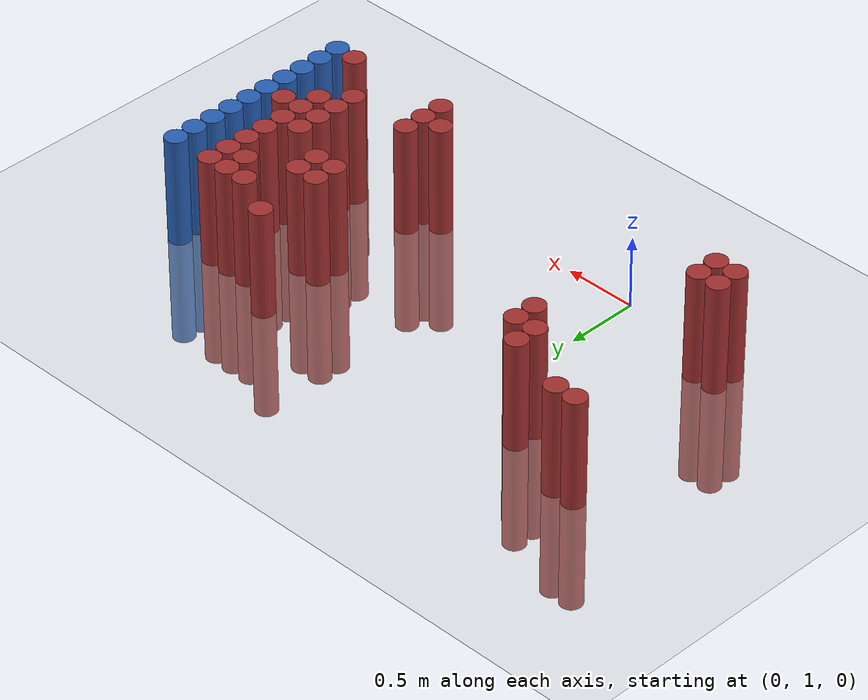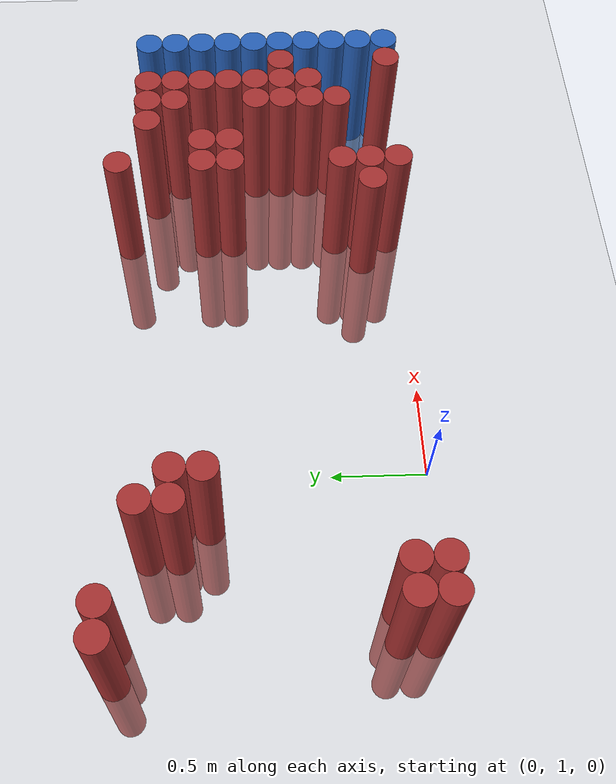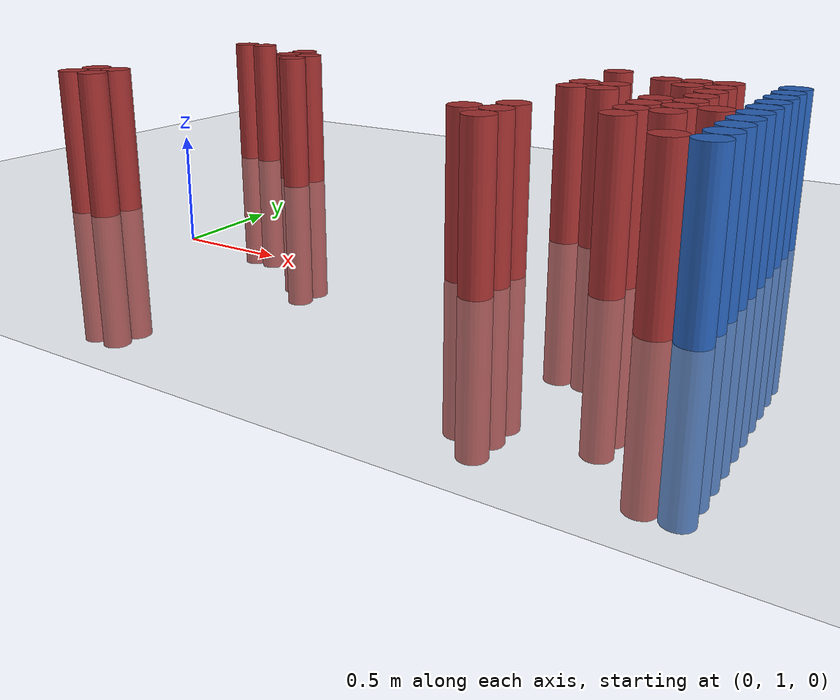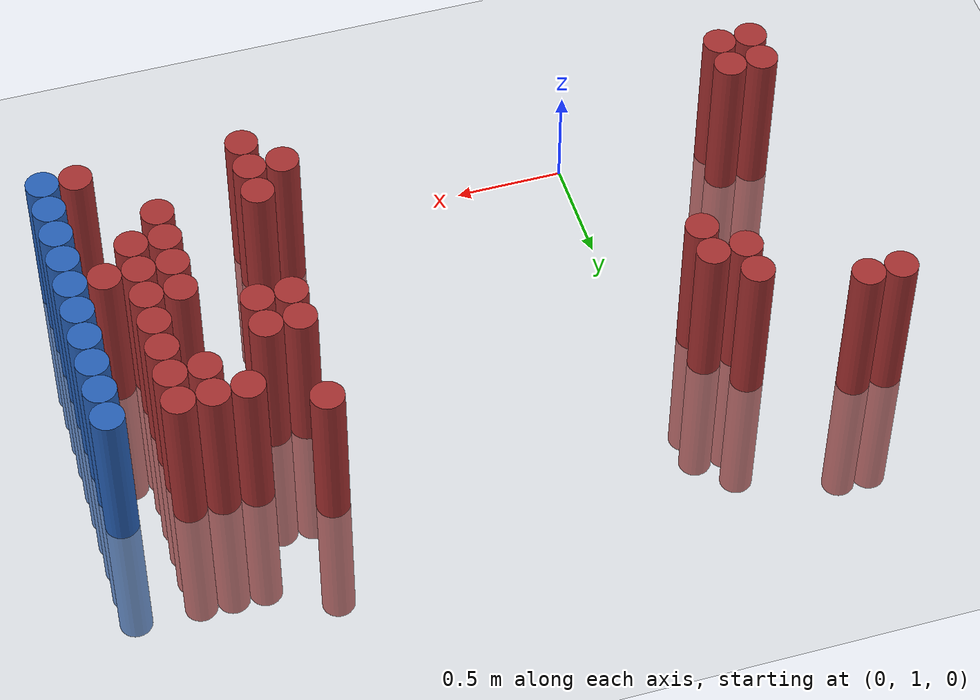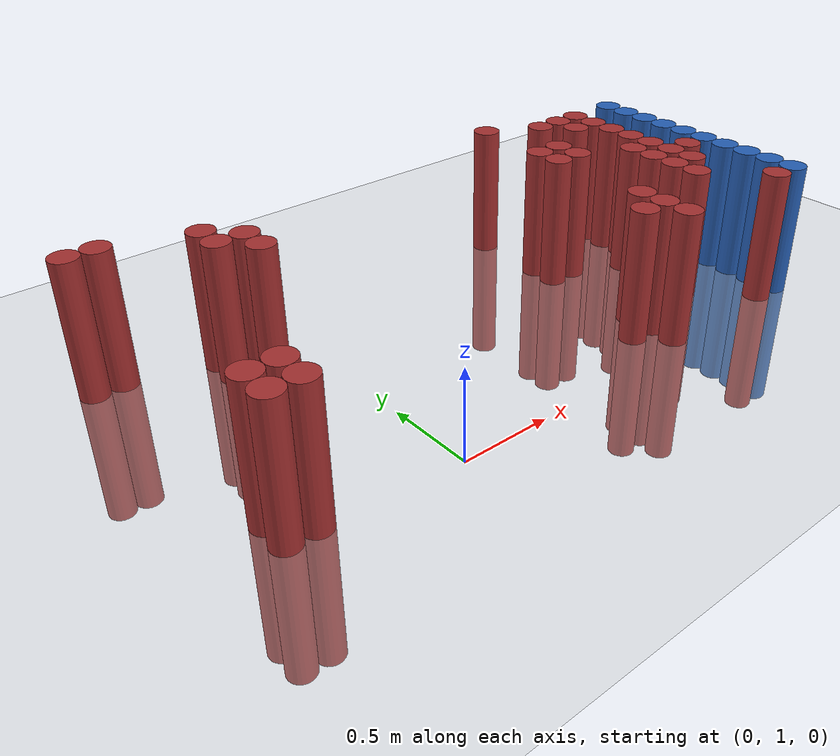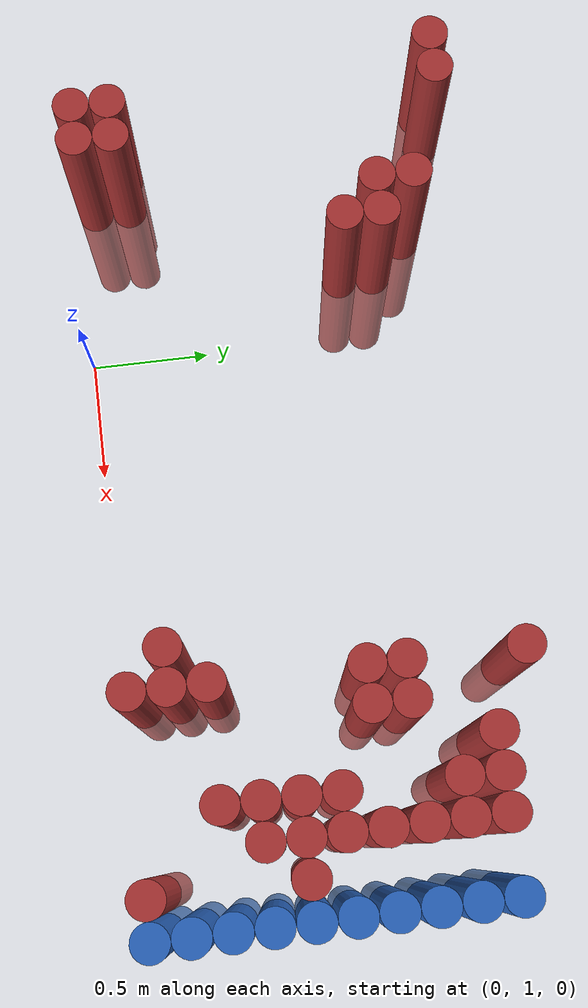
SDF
<sdf version="1.6">
 <world name="default">
  <model name="ground_plane">
   <static>1</static>
   <link name="link">
    <collision name="collision">
     <geometry><plane><normal>0 0 1</normal><size>100 100</size></plane></geometry>
     <surface><friction><ode><mu>100</mu><mu2>50</mu2></ode></friction></surface>
    </collision>
    <visual name="visual">
     <cast_shadows>0</cast_shadows>
     <geometry><plane><normal>0 0 1</normal><size>100 100</size></plane></geometry>
     <material>
      <script><uri>file://media/materials/scripts/gazebo.material</uri><name>Gazebo/Grey</name></script>
     </material>
    </visual>
   </link>
  </model>
  <model name="unit_cylinder_157">
   <static>1</static>
   <pose>-1.025000 2.575000 0.000000 0.000000 0.000000 0.000000</pose>
   <link name="link">
    <inertial>
     <mass>1</mass>
     <inertia><ixx>0.145833</ixx><ixy>0</ixy><ixz>0</ixz><iyy>0.145833</iyy><iyz>0</iyz><izz>0.125</izz></inertia>
    </inertial>
    <collision name="collision">
     <geometry><cylinder><radius>0.075000</radius><length>1.5</length></cylinder></geometry>
    </collision>
    <visual name="visual">
     <geometry><cylinder><radius>0.075000</radius><length>1.5</length></cylinder></geometry>
     <material>
      <ambient>0.648000 0.192000 0.192000 1</ambient>
      <diffuse>0.648000 0.192000 0.192000 1</diffuse>
     </material>
     <material>
      <script><name>Gazebo/Grey</name><uri>file://media/materials/scripts/gazebo.material</uri></script>
     </material>
    </visual>
   </link>
  </model>
  <model name="unit_cylinder_161">
   <static>1</static>
   <pose>-0.875000 1.075000 0.000000 0.000000 0.000000 0.000000</pose>
   <link name="link">
    <inertial>
     <mass>1</mass>
     <inertia><ixx>0.145833</ixx><ixy>0</ixy><ixz>0</ixz><iyy>0.145833</iyy><iyz>0</iyz><izz>0.125</izz></inertia>
    </inertial>
    <collision name="collision">
     <geometry><cylinder><radius>0.075000</radius><length>1.5</length></cylinder></geometry>
    </collision>
    <visual name="visual">
     <geometry><cylinder><radius>0.075000</radius><length>1.5</length></cylinder></geometry>
     <material>
      <ambient>0.648000 0.192000 0.192000 1</ambient>
      <diffuse>0.648000 0.192000 0.192000 1</diffuse>
     </material>
     <material>
      <script><name>Gazebo/Grey</name><uri>file://media/materials/scripts/gazebo.material</uri></script>
     </material>
    </visual>
   </link>
  </model>
  <model name="unit_cylinder_162">
   <static>1</static>
   <pose>-0.875000 1.225000 0.000000 0.000000 0.000000 0.000000</pose>
   <link name="link">
    <inertial>
     <mass>1</mass>
     <inertia><ixx>0.145833</ixx><ixy>0</ixy><ixz>0</ixz><iyy>0.145833</iyy><iyz>0</iyz><izz>0.125</izz></inertia>
    </inertial>
    <collision name="collision">
     <geometry><cylinder><radius>0.075000</radius><length>1.5</length></cylinder></geometry>
    </collision>
    <visual name="visual">
     <geometry><cylinder><radius>0.075000</radius><length>1.5</length></cylinder></geometry>
     <material>
      <ambient>0.648000 0.192000 0.192000 1</ambient>
      <diffuse>0.648000 0.192000 0.192000 1</diffuse>
     </material>
     <material>
      <script><name>Gazebo/Grey</name><uri>file://media/materials/scripts/gazebo.material</uri></script>
     </material>
    </visual>
   </link>
  </model>
  <model name="unit_cylinder_163">
   <static>1</static>
   <pose>-0.875000 2.575000 0.000000 0.000000 0.000000 0.000000</pose>
   <link name="link">
    <inertial>
     <mass>1</mass>
     <inertia><ixx>0.145833</ixx><ixy>0</ixy><ixz>0</ixz><iyy>0.145833</iyy><iyz>0</iyz><izz>0.125</izz></inertia>
    </inertial>
    <collision name="collision">
     <geometry><cylinder><radius>0.075000</radius><length>1.5</length></cylinder></geometry>
    </collision>
    <visual name="visual">
     <geometry><cylinder><radius>0.075000</radius><length>1.5</length></cylinder></geometry>
     <material>
      <ambient>0.648000 0.192000 0.192000 1</ambient>
      <diffuse>0.648000 0.192000 0.192000 1</diffuse>
     </material>
     <material>
      <script><name>Gazebo/Grey</name><uri>file://media/materials/scripts/gazebo.material</uri></script>
     </material>
    </visual>
   </link>
  </model>
  <model name="unit_cylinder_166">
   <static>1</static>
   <pose>-0.725000 1.075000 0.000000 0.000000 0.000000 0.000000</pose>
   <link name="link">
    <inertial>
     <mass>1</mass>
     <inertia><ixx>0.145833</ixx><ixy>0</ixy><ixz>0</ixz><iyy>0.145833</iyy><iyz>0</iyz><izz>0.125</izz></inertia>
    </inertial>
    <collision name="collision">
     <geometry><cylinder><radius>0.075000</radius><length>1.5</length></cylinder></geometry>
    </collision>
    <visual name="visual">
     <geometry><cylinder><radius>0.075000</radius><length>1.5</length></cylinder></geometry>
     <material>
      <ambient>0.648000 0.192000 0.192000 1</ambient>
      <diffuse>0.648000 0.192000 0.192000 1</diffuse>
     </material>
     <material>
      <script><name>Gazebo/Grey</name><uri>file://media/materials/scripts/gazebo.material</uri></script>
     </material>
    </visual>
   </link>
  </model>
  <model name="unit_cylinder_167">
   <static>1</static>
   <pose>-0.725000 1.225000 0.000000 0.000000 0.000000 0.000000</pose>
   <link name="link">
    <inertial>
     <mass>1</mass>
     <inertia><ixx>0.145833</ixx><ixy>0</ixy><ixz>0</ixz><iyy>0.145833</iyy><iyz>0</iyz><izz>0.125</izz></inertia>
    </inertial>
    <collision name="collision">
     <geometry><cylinder><radius>0.075000</radius><length>1.5</length></cylinder></geometry>
    </collision>
    <visual name="visual">
     <geometry><cylinder><radius>0.075000</radius><length>1.5</length></cylinder></geometry>
     <material>
      <ambient>0.648000 0.192000 0.192000 1</ambient>
      <diffuse>0.648000 0.192000 0.192000 1</diffuse>
     </material>
     <material>
      <script><name>Gazebo/Grey</name><uri>file://media/materials/scripts/gazebo.material</uri></script>
     </material>
    </visual>
   </link>
  </model>
  <model name="unit_cylinder_175">
   <static>1</static>
   <pose>-0.425000 2.275000 0.000000 0.000000 0.000000 0.000000</pose>
   <link name="link">
    <inertial>
     <mass>1</mass>
     <inertia><ixx>0.145833</ixx><ixy>0</ixy><ixz>0</ixz><iyy>0.145833</iyy><iyz>0</iyz><izz>0.125</izz></inertia>
    </inertial>
    <collision name="collision">
     <geometry><cylinder><radius>0.075000</radius><length>1.5</length></cylinder></geometry>
    </collision>
    <visual name="visual">
     <geometry><cylinder><radius>0.075000</radius><length>1.5</length></cylinder></geometry>
     <material>
      <ambient>0.648000 0.192000 0.192000 1</ambient>
      <diffuse>0.648000 0.192000 0.192000 1</diffuse>
     </material>
     <material>
      <script><name>Gazebo/Grey</name><uri>file://media/materials/scripts/gazebo.material</uri></script>
     </material>
    </visual>
   </link>
  </model>
  <model name="unit_cylinder_176">
   <static>1</static>
   <pose>-0.425000 2.425000 0.000000 0.000000 0.000000 0.000000</pose>
   <link name="link">
    <inertial>
     <mass>1</mass>
     <inertia><ixx>0.145833</ixx><ixy>0</ixy><ixz>0</ixz><iyy>0.145833</iyy><iyz>0</iyz><izz>0.125</izz></inertia>
    </inertial>
    <collision name="collision">
     <geometry><cylinder><radius>0.075000</radius><length>1.5</length></cylinder></geometry>
    </collision>
    <visual name="visual">
     <geometry><cylinder><radius>0.075000</radius><length>1.5</length></cylinder></geometry>
     <material>
      <ambient>0.648000 0.192000 0.192000 1</ambient>
      <diffuse>0.648000 0.192000 0.192000 1</diffuse>
     </material>
     <material>
      <script><name>Gazebo/Grey</name><uri>file://media/materials/scripts/gazebo.material</uri></script>
     </material>
    </visual>
   </link>
  </model>
  <model name="unit_cylinder_179">
   <static>1</static>
   <pose>-0.275000 2.125000 0.000000 0.000000 0.000000 0.000000</pose>
   <link name="link">
    <inertial>
     <mass>1</mass>
     <inertia><ixx>0.145833</ixx><ixy>0</ixy><ixz>0</ixz><iyy>0.145833</iyy><iyz>0</iyz><izz>0.125</izz></inertia>
    </inertial>
    <collision name="collision">
     <geometry><cylinder><radius>0.075000</radius><length>1.5</length></cylinder></geometry>
    </collision>
    <visual name="visual">
     <geometry><cylinder><radius>0.075000</radius><length>1.5</length></cylinder></geometry>
     <material>
      <ambient>0.648000 0.192000 0.192000 1</ambient>
      <diffuse>0.648000 0.192000 0.192000 1</diffuse>
     </material>
     <material>
      <script><name>Gazebo/Grey</name><uri>file://media/materials/scripts/gazebo.material</uri></script>
     </material>
    </visual>
   </link>
  </model>
  <model name="unit_cylinder_180">
   <static>1</static>
   <pose>-0.275000 2.275000 0.000000 0.000000 0.000000 0.000000</pose>
   <link name="link">
    <inertial>
     <mass>1</mass>
     <inertia><ixx>0.145833</ixx><ixy>0</ixy><ixz>0</ixz><iyy>0.145833</iyy><iyz>0</iyz><izz>0.125</izz></inertia>
    </inertial>
    <collision name="collision">
     <geometry><cylinder><radius>0.075000</radius><length>1.5</length></cylinder></geometry>
    </collision>
    <visual name="visual">
     <geometry><cylinder><radius>0.075000</radius><length>1.5</length></cylinder></geometry>
     <material>
      <ambient>0.648000 0.192000 0.192000 1</ambient>
      <diffuse>0.648000 0.192000 0.192000 1</diffuse>
     </material>
     <material>
      <script><name>Gazebo/Grey</name><uri>file://media/materials/scripts/gazebo.material</uri></script>
     </material>
    </visual>
   </link>
  </model>
  <model name="unit_cylinder_197">
   <static>1</static>
   <pose>1.375000 1.225000 0.000000 0.000000 0.000000 0.000000</pose>
   <link name="link">
    <inertial>
     <mass>1</mass>
     <inertia><ixx>0.145833</ixx><ixy>0</ixy><ixz>0</ixz><iyy>0.145833</iyy><iyz>0</iyz><izz>0.125</izz></inertia>
    </inertial>
    <collision name="collision">
     <geometry><cylinder><radius>0.075000</radius><length>1.5</length></cylinder></geometry>
    </collision>
    <visual name="visual">
     <geometry><cylinder><radius>0.075000</radius><length>1.5</length></cylinder></geometry>
     <material>
      <ambient>0.648000 0.192000 0.192000 1</ambient>
      <diffuse>0.648000 0.192000 0.192000 1</diffuse>
     </material>
     <material>
      <script><name>Gazebo/Grey</name><uri>file://media/materials/scripts/gazebo.material</uri></script>
     </material>
    </visual>
   </link>
  </model>
  <model name="unit_cylinder_201">
   <static>1</static>
   <pose>1.525000 1.075000 0.000000 0.000000 0.000000 0.000000</pose>
   <link name="link">
    <inertial>
     <mass>1</mass>
     <inertia><ixx>0.145833</ixx><ixy>0</ixy><ixz>0</ixz><iyy>0.145833</iyy><iyz>0</iyz><izz>0.125</izz></inertia>
    </inertial>
    <collision name="collision">
     <geometry><cylinder><radius>0.075000</radius><length>1.5</length></cylinder></geometry>
    </collision>
    <visual name="visual">
     <geometry><cylinder><radius>0.075000</radius><length>1.5</length></cylinder></geometry>
     <material>
      <ambient>0.648000 0.192000 0.192000 1</ambient>
      <diffuse>0.648000 0.192000 0.192000 1</diffuse>
     </material>
     <material>
      <script><name>Gazebo/Grey</name><uri>file://media/materials/scripts/gazebo.material</uri></script>
     </material>
    </visual>
   </link>
  </model>
  <model name="unit_cylinder_202">
   <static>1</static>
   <pose>1.525000 1.225000 0.000000 0.000000 0.000000 0.000000</pose>
   <link name="link">
    <inertial>
     <mass>1</mass>
     <inertia><ixx>0.145833</ixx><ixy>0</ixy><ixz>0</ixz><iyy>0.145833</iyy><iyz>0</iyz><izz>0.125</izz></inertia>
    </inertial>
    <collision name="collision">
     <geometry><cylinder><radius>0.075000</radius><length>1.5</length></cylinder></geometry>
    </collision>
    <visual name="visual">
     <geometry><cylinder><radius>0.075000</radius><length>1.5</length></cylinder></geometry>
     <material>
      <ambient>0.648000 0.192000 0.192000 1</ambient>
      <diffuse>0.648000 0.192000 0.192000 1</diffuse>
     </material>
     <material>
      <script><name>Gazebo/Grey</name><uri>file://media/materials/scripts/gazebo.material</uri></script>
     </material>
    </visual>
   </link>
  </model>
  <model name="unit_cylinder_203">
   <static>1</static>
   <pose>1.525000 1.375000 0.000000 0.000000 0.000000 0.000000</pose>
   <link name="link">
    <inertial>
     <mass>1</mass>
     <inertia><ixx>0.145833</ixx><ixy>0</ixy><ixz>0</ixz><iyy>0.145833</iyy><iyz>0</iyz><izz>0.125</izz></inertia>
    </inertial>
    <collision name="collision">
     <geometry><cylinder><radius>0.075000</radius><length>1.5</length></cylinder></geometry>
    </collision>
    <visual name="visual">
     <geometry><cylinder><radius>0.075000</radius><length>1.5</length></cylinder></geometry>
     <material>
      <ambient>0.648000 0.192000 0.192000 1</ambient>
      <diffuse>0.648000 0.192000 0.192000 1</diffuse>
     </material>
     <material>
      <script><name>Gazebo/Grey</name><uri>file://media/materials/scripts/gazebo.material</uri></script>
     </material>
    </visual>
   </link>
  </model>
  <model name="unit_cylinder_204">
   <static>1</static>
   <pose>1.525000 1.975000 0.000000 0.000000 0.000000 0.000000</pose>
   <link name="link">
    <inertial>
     <mass>1</mass>
     <inertia><ixx>0.145833</ixx><ixy>0</ixy><ixz>0</ixz><iyy>0.145833</iyy><iyz>0</iyz><izz>0.125</izz></inertia>
    </inertial>
    <collision name="collision">
     <geometry><cylinder><radius>0.075000</radius><length>1.5</length></cylinder></geometry>
    </collision>
    <visual name="visual">
     <geometry><cylinder><radius>0.075000</radius><length>1.5</length></cylinder></geometry>
     <material>
      <ambient>0.648000 0.192000 0.192000 1</ambient>
      <diffuse>0.648000 0.192000 0.192000 1</diffuse>
     </material>
     <material>
      <script><name>Gazebo/Grey</name><uri>file://media/materials/scripts/gazebo.material</uri></script>
     </material>
    </visual>
   </link>
  </model>
  <model name="unit_cylinder_205">
   <static>1</static>
   <pose>1.525000 2.125000 0.000000 0.000000 0.000000 0.000000</pose>
   <link name="link">
    <inertial>
     <mass>1</mass>
     <inertia><ixx>0.145833</ixx><ixy>0</ixy><ixz>0</ixz><iyy>0.145833</iyy><iyz>0</iyz><izz>0.125</izz></inertia>
    </inertial>
    <collision name="collision">
     <geometry><cylinder><radius>0.075000</radius><length>1.5</length></cylinder></geometry>
    </collision>
    <visual name="visual">
     <geometry><cylinder><radius>0.075000</radius><length>1.5</length></cylinder></geometry>
     <material>
      <ambient>0.648000 0.192000 0.192000 1</ambient>
      <diffuse>0.648000 0.192000 0.192000 1</diffuse>
     </material>
     <material>
      <script><name>Gazebo/Grey</name><uri>file://media/materials/scripts/gazebo.material</uri></script>
     </material>
    </visual>
   </link>
  </model>
  <model name="unit_cylinder_206">
   <static>1</static>
   <pose>1.525000 2.575000 0.000000 0.000000 0.000000 0.000000</pose>
   <link name="link">
    <inertial>
     <mass>1</mass>
     <inertia><ixx>0.145833</ixx><ixy>0</ixy><ixz>0</ixz><iyy>0.145833</iyy><iyz>0</iyz><izz>0.125</izz></inertia>
    </inertial>
    <collision name="collision">
     <geometry><cylinder><radius>0.075000</radius><length>1.5</length></cylinder></geometry>
    </collision>
    <visual name="visual">
     <geometry><cylinder><radius>0.075000</radius><length>1.5</length></cylinder></geometry>
     <material>
      <ambient>0.648000 0.192000 0.192000 1</ambient>
      <diffuse>0.648000 0.192000 0.192000 1</diffuse>
     </material>
     <material>
      <script><name>Gazebo/Grey</name><uri>file://media/materials/scripts/gazebo.material</uri></script>
     </material>
    </visual>
   </link>
  </model>
  <model name="unit_cylinder_207">
   <static>1</static>
   <pose>1.675000 1.975000 0.000000 0.000000 0.000000 0.000000</pose>
   <link name="link">
    <inertial>
     <mass>1</mass>
     <inertia><ixx>0.145833</ixx><ixy>0</ixy><ixz>0</ixz><iyy>0.145833</iyy><iyz>0</iyz><izz>0.125</izz></inertia>
    </inertial>
    <collision name="collision">
     <geometry><cylinder><radius>0.075000</radius><length>1.5</length></cylinder></geometry>
    </collision>
    <visual name="visual">
     <geometry><cylinder><radius>0.075000</radius><length>1.5</length></cylinder></geometry>
     <material>
      <ambient>0.648000 0.192000 0.192000 1</ambient>
      <diffuse>0.648000 0.192000 0.192000 1</diffuse>
     </material>
     <material>
      <script><name>Gazebo/Grey</name><uri>file://media/materials/scripts/gazebo.material</uri></script>
     </material>
    </visual>
   </link>
  </model>
  <model name="unit_cylinder_208">
   <static>1</static>
   <pose>1.675000 2.125000 0.000000 0.000000 0.000000 0.000000</pose>
   <link name="link">
    <inertial>
     <mass>1</mass>
     <inertia><ixx>0.145833</ixx><ixy>0</ixy><ixz>0</ixz><iyy>0.145833</iyy><iyz>0</iyz><izz>0.125</izz></inertia>
    </inertial>
    <collision name="collision">
     <geometry><cylinder><radius>0.075000</radius><length>1.5</length></cylinder></geometry>
    </collision>
    <visual name="visual">
     <geometry><cylinder><radius>0.075000</radius><length>1.5</length></cylinder></geometry>
     <material>
      <ambient>0.648000 0.192000 0.192000 1</ambient>
      <diffuse>0.648000 0.192000 0.192000 1</diffuse>
     </material>
     <material>
      <script><name>Gazebo/Grey</name><uri>file://media/materials/scripts/gazebo.material</uri></script>
     </material>
    </visual>
   </link>
  </model>
  <model name="unit_cylinder_210">
   <static>1</static>
   <pose>1.825000 2.425000 0.000000 0.000000 0.000000 0.000000</pose>
   <link name="link">
    <inertial>
     <mass>1</mass>
     <inertia><ixx>0.145833</ixx><ixy>0</ixy><ixz>0</ixz><iyy>0.145833</iyy><iyz>0</iyz><izz>0.125</izz></inertia>
    </inertial>
    <collision name="collision">
     <geometry><cylinder><radius>0.075000</radius><length>1.5</length></cylinder></geometry>
    </collision>
    <visual name="visual">
     <geometry><cylinder><radius>0.075000</radius><length>1.5</length></cylinder></geometry>
     <material>
      <ambient>0.648000 0.192000 0.192000 1</ambient>
      <diffuse>0.648000 0.192000 0.192000 1</diffuse>
     </material>
     <material>
      <script><name>Gazebo/Grey</name><uri>file://media/materials/scripts/gazebo.material</uri></script>
     </material>
    </visual>
   </link>
  </model>
  <model name="unit_cylinder_211">
   <static>1</static>
   <pose>1.975000 1.375000 0.000000 0.000000 0.000000 0.000000</pose>
   <link name="link">
    <inertial>
     <mass>1</mass>
     <inertia><ixx>0.145833</ixx><ixy>0</ixy><ixz>0</ixz><iyy>0.145833</iyy><iyz>0</iyz><izz>0.125</izz></inertia>
    </inertial>
    <collision name="collision">
     <geometry><cylinder><radius>0.075000</radius><length>1.5</length></cylinder></geometry>
    </collision>
    <visual name="visual">
     <geometry><cylinder><radius>0.075000</radius><length>1.5</length></cylinder></geometry>
     <material>
      <ambient>0.648000 0.192000 0.192000 1</ambient>
      <diffuse>0.648000 0.192000 0.192000 1</diffuse>
     </material>
     <material>
      <script><name>Gazebo/Grey</name><uri>file://media/materials/scripts/gazebo.material</uri></script>
     </material>
    </visual>
   </link>
  </model>
  <model name="unit_cylinder_212">
   <static>1</static>
   <pose>1.975000 1.525000 0.000000 0.000000 0.000000 0.000000</pose>
   <link name="link">
    <inertial>
     <mass>1</mass>
     <inertia><ixx>0.145833</ixx><ixy>0</ixy><ixz>0</ixz><iyy>0.145833</iyy><iyz>0</iyz><izz>0.125</izz></inertia>
    </inertial>
    <collision name="collision">
     <geometry><cylinder><radius>0.075000</radius><length>1.5</length></cylinder></geometry>
    </collision>
    <visual name="visual">
     <geometry><cylinder><radius>0.075000</radius><length>1.5</length></cylinder></geometry>
     <material>
      <ambient>0.648000 0.192000 0.192000 1</ambient>
      <diffuse>0.648000 0.192000 0.192000 1</diffuse>
     </material>
     <material>
      <script><name>Gazebo/Grey</name><uri>file://media/materials/scripts/gazebo.material</uri></script>
     </material>
    </visual>
   </link>
  </model>
  <model name="unit_cylinder_213">
   <static>1</static>
   <pose>1.975000 1.675000 0.000000 0.000000 0.000000 0.000000</pose>
   <link name="link">
    <inertial>
     <mass>1</mass>
     <inertia><ixx>0.145833</ixx><ixy>0</ixy><ixz>0</ixz><iyy>0.145833</iyy><iyz>0</iyz><izz>0.125</izz></inertia>
    </inertial>
    <collision name="collision">
     <geometry><cylinder><radius>0.075000</radius><length>1.5</length></cylinder></geometry>
    </collision>
    <visual name="visual">
     <geometry><cylinder><radius>0.075000</radius><length>1.5</length></cylinder></geometry>
     <material>
      <ambient>0.648000 0.192000 0.192000 1</ambient>
      <diffuse>0.648000 0.192000 0.192000 1</diffuse>
     </material>
     <material>
      <script><name>Gazebo/Grey</name><uri>file://media/materials/scripts/gazebo.material</uri></script>
     </material>
    </visual>
   </link>
  </model>
  <model name="unit_cylinder_214">
   <static>1</static>
   <pose>1.975000 1.825000 0.000000 0.000000 0.000000 0.000000</pose>
   <link name="link">
    <inertial>
     <mass>1</mass>
     <inertia><ixx>0.145833</ixx><ixy>0</ixy><ixz>0</ixz><iyy>0.145833</iyy><iyz>0</iyz><izz>0.125</izz></inertia>
    </inertial>
    <collision name="collision">
     <geometry><cylinder><radius>0.075000</radius><length>1.5</length></cylinder></geometry>
    </collision>
    <visual name="visual">
     <geometry><cylinder><radius>0.075000</radius><length>1.5</length></cylinder></geometry>
     <material>
      <ambient>0.648000 0.192000 0.192000 1</ambient>
      <diffuse>0.648000 0.192000 0.192000 1</diffuse>
     </material>
     <material>
      <script><name>Gazebo/Grey</name><uri>file://media/materials/scripts/gazebo.material</uri></script>
     </material>
    </visual>
   </link>
  </model>
  <model name="unit_cylinder_215">
   <static>1</static>
   <pose>1.975000 2.275000 0.000000 0.000000 0.000000 0.000000</pose>
   <link name="link">
    <inertial>
     <mass>1</mass>
     <inertia><ixx>0.145833</ixx><ixy>0</ixy><ixz>0</ixz><iyy>0.145833</iyy><iyz>0</iyz><izz>0.125</izz></inertia>
    </inertial>
    <collision name="collision">
     <geometry><cylinder><radius>0.075000</radius><length>1.5</length></cylinder></geometry>
    </collision>
    <visual name="visual">
     <geometry><cylinder><radius>0.075000</radius><length>1.5</length></cylinder></geometry>
     <material>
      <ambient>0.648000 0.192000 0.192000 1</ambient>
      <diffuse>0.648000 0.192000 0.192000 1</diffuse>
     </material>
     <material>
      <script><name>Gazebo/Grey</name><uri>file://media/materials/scripts/gazebo.material</uri></script>
     </material>
    </visual>
   </link>
  </model>
  <model name="unit_cylinder_216">
   <static>1</static>
   <pose>1.975000 2.425000 0.000000 0.000000 0.000000 0.000000</pose>
   <link name="link">
    <inertial>
     <mass>1</mass>
     <inertia><ixx>0.145833</ixx><ixy>0</ixy><ixz>0</ixz><iyy>0.145833</iyy><iyz>0</iyz><izz>0.125</izz></inertia>
    </inertial>
    <collision name="collision">
     <geometry><cylinder><radius>0.075000</radius><length>1.5</length></cylinder></geometry>
    </collision>
    <visual name="visual">
     <geometry><cylinder><radius>0.075000</radius><length>1.5</length></cylinder></geometry>
     <material>
      <ambient>0.648000 0.192000 0.192000 1</ambient>
      <diffuse>0.648000 0.192000 0.192000 1</diffuse>
     </material>
     <material>
      <script><name>Gazebo/Grey</name><uri>file://media/materials/scripts/gazebo.material</uri></script>
     </material>
    </visual>
   </link>
  </model>
  <model name="unit_cylinder_218">
   <static>1</static>
   <pose>2.125000 1.525000 0.000000 0.000000 0.000000 0.000000</pose>
   <link name="link">
    <inertial>
     <mass>1</mass>
     <inertia><ixx>0.145833</ixx><ixy>0</ixy><ixz>0</ixz><iyy>0.145833</iyy><iyz>0</iyz><izz>0.125</izz></inertia>
    </inertial>
    <collision name="collision">
     <geometry><cylinder><radius>0.075000</radius><length>1.5</length></cylinder></geometry>
    </collision>
    <visual name="visual">
     <geometry><cylinder><radius>0.075000</radius><length>1.5</length></cylinder></geometry>
     <material>
      <ambient>0.648000 0.192000 0.192000 1</ambient>
      <diffuse>0.648000 0.192000 0.192000 1</diffuse>
     </material>
     <material>
      <script><name>Gazebo/Grey</name><uri>file://media/materials/scripts/gazebo.material</uri></script>
     </material>
    </visual>
   </link>
  </model>
  <model name="unit_cylinder_219">
   <static>1</static>
   <pose>2.125000 1.675000 0.000000 0.000000 0.000000 0.000000</pose>
   <link name="link">
    <inertial>
     <mass>1</mass>
     <inertia><ixx>0.145833</ixx><ixy>0</ixy><ixz>0</ixz><iyy>0.145833</iyy><iyz>0</iyz><izz>0.125</izz></inertia>
    </inertial>
    <collision name="collision">
     <geometry><cylinder><radius>0.075000</radius><length>1.5</length></cylinder></geometry>
    </collision>
    <visual name="visual">
     <geometry><cylinder><radius>0.075000</radius><length>1.5</length></cylinder></geometry>
     <material>
      <ambient>0.648000 0.192000 0.192000 1</ambient>
      <diffuse>0.648000 0.192000 0.192000 1</diffuse>
     </material>
     <material>
      <script><name>Gazebo/Grey</name><uri>file://media/materials/scripts/gazebo.material</uri></script>
     </material>
    </visual>
   </link>
  </model>
  <model name="unit_cylinder_220">
   <static>1</static>
   <pose>2.125000 1.825000 0.000000 0.000000 0.000000 0.000000</pose>
   <link name="link">
    <inertial>
     <mass>1</mass>
     <inertia><ixx>0.145833</ixx><ixy>0</ixy><ixz>0</ixz><iyy>0.145833</iyy><iyz>0</iyz><izz>0.125</izz></inertia>
    </inertial>
    <collision name="collision">
     <geometry><cylinder><radius>0.075000</radius><length>1.5</length></cylinder></geometry>
    </collision>
    <visual name="visual">
     <geometry><cylinder><radius>0.075000</radius><length>1.5</length></cylinder></geometry>
     <material>
      <ambient>0.648000 0.192000 0.192000 1</ambient>
      <diffuse>0.648000 0.192000 0.192000 1</diffuse>
     </material>
     <material>
      <script><name>Gazebo/Grey</name><uri>file://media/materials/scripts/gazebo.material</uri></script>
     </material>
    </visual>
   </link>
  </model>
  <model name="unit_cylinder_221">
   <static>1</static>
   <pose>2.125000 1.975000 0.000000 0.000000 0.000000 0.000000</pose>
   <link name="link">
    <inertial>
     <mass>1</mass>
     <inertia><ixx>0.145833</ixx><ixy>0</ixy><ixz>0</ixz><iyy>0.145833</iyy><iyz>0</iyz><izz>0.125</izz></inertia>
    </inertial>
    <collision name="collision">
     <geometry><cylinder><radius>0.075000</radius><length>1.5</length></cylinder></geometry>
    </collision>
    <visual name="visual">
     <geometry><cylinder><radius>0.075000</radius><length>1.5</length></cylinder></geometry>
     <material>
      <ambient>0.648000 0.192000 0.192000 1</ambient>
      <diffuse>0.648000 0.192000 0.192000 1</diffuse>
     </material>
     <material>
      <script><name>Gazebo/Grey</name><uri>file://media/materials/scripts/gazebo.material</uri></script>
     </material>
    </visual>
   </link>
  </model>
  <model name="unit_cylinder_222">
   <static>1</static>
   <pose>2.125000 2.125000 0.000000 0.000000 0.000000 0.000000</pose>
   <link name="link">
    <inertial>
     <mass>1</mass>
     <inertia><ixx>0.145833</ixx><ixy>0</ixy><ixz>0</ixz><iyy>0.145833</iyy><iyz>0</iyz><izz>0.125</izz></inertia>
    </inertial>
    <collision name="collision">
     <geometry><cylinder><radius>0.075000</radius><length>1.5</length></cylinder></geometry>
    </collision>
    <visual name="visual">
     <geometry><cylinder><radius>0.075000</radius><length>1.5</length></cylinder></geometry>
     <material>
      <ambient>0.648000 0.192000 0.192000 1</ambient>
      <diffuse>0.648000 0.192000 0.192000 1</diffuse>
     </material>
     <material>
      <script><name>Gazebo/Grey</name><uri>file://media/materials/scripts/gazebo.material</uri></script>
     </material>
    </visual>
   </link>
  </model>
  <model name="unit_cylinder_223">
   <static>1</static>
   <pose>2.125000 2.275000 0.000000 0.000000 0.000000 0.000000</pose>
   <link name="link">
    <inertial>
     <mass>1</mass>
     <inertia><ixx>0.145833</ixx><ixy>0</ixy><ixz>0</ixz><iyy>0.145833</iyy><iyz>0</iyz><izz>0.125</izz></inertia>
    </inertial>
    <collision name="collision">
     <geometry><cylinder><radius>0.075000</radius><length>1.5</length></cylinder></geometry>
    </collision>
    <visual name="visual">
     <geometry><cylinder><radius>0.075000</radius><length>1.5</length></cylinder></geometry>
     <material>
      <ambient>0.648000 0.192000 0.192000 1</ambient>
      <diffuse>0.648000 0.192000 0.192000 1</diffuse>
     </material>
     <material>
      <script><name>Gazebo/Grey</name><uri>file://media/materials/scripts/gazebo.material</uri></script>
     </material>
    </visual>
   </link>
  </model>
  <model name="unit_cylinder_224">
   <static>1</static>
   <pose>2.125000 2.425000 0.000000 0.000000 0.000000 0.000000</pose>
   <link name="link">
    <inertial>
     <mass>1</mass>
     <inertia><ixx>0.145833</ixx><ixy>0</ixy><ixz>0</ixz><iyy>0.145833</iyy><iyz>0</iyz><izz>0.125</izz></inertia>
    </inertial>
    <collision name="collision">
     <geometry><cylinder><radius>0.075000</radius><length>1.5</length></cylinder></geometry>
    </collision>
    <visual name="visual">
     <geometry><cylinder><radius>0.075000</radius><length>1.5</length></cylinder></geometry>
     <material>
      <ambient>0.648000 0.192000 0.192000 1</ambient>
      <diffuse>0.648000 0.192000 0.192000 1</diffuse>
     </material>
     <material>
      <script><name>Gazebo/Grey</name><uri>file://media/materials/scripts/gazebo.material</uri></script>
     </material>
    </visual>
   </link>
  </model>
  <model name="unit_cylinder_232">
   <static>1</static>
   <pose>2.275000 1.075000 0.000000 0.000000 0.000000 0.000000</pose>
   <link name="link">
    <inertial>
     <mass>1</mass>
     <inertia><ixx>0.145833</ixx><ixy>0</ixy><ixz>0</ixz><iyy>0.145833</iyy><iyz>0</iyz><izz>0.125</izz></inertia>
    </inertial>
    <collision name="collision">
     <geometry><cylinder><radius>0.075000</radius><length>1.5</length></cylinder></geometry>
    </collision>
    <visual name="visual">
     <geometry><cylinder><radius>0.075000</radius><length>1.5</length></cylinder></geometry>
     <material>
      <ambient>0.648000 0.192000 0.192000 1</ambient>
      <diffuse>0.648000 0.192000 0.192000 1</diffuse>
     </material>
     <material>
      <script><name>Gazebo/Grey</name><uri>file://media/materials/scripts/gazebo.material</uri></script>
     </material>
    </visual>
   </link>
  </model>
  <model name="unit_cylinder_233">
   <static>1</static>
   <pose>2.275000 1.675000 0.000000 0.000000 0.000000 0.000000</pose>
   <link name="link">
    <inertial>
     <mass>1</mass>
     <inertia><ixx>0.145833</ixx><ixy>0</ixy><ixz>0</ixz><iyy>0.145833</iyy><iyz>0</iyz><izz>0.125</izz></inertia>
    </inertial>
    <collision name="collision">
     <geometry><cylinder><radius>0.075000</radius><length>1.5</length></cylinder></geometry>
    </collision>
    <visual name="visual">
     <geometry><cylinder><radius>0.075000</radius><length>1.5</length></cylinder></geometry>
     <material>
      <ambient>0.648000 0.192000 0.192000 1</ambient>
      <diffuse>0.648000 0.192000 0.192000 1</diffuse>
     </material>
     <material>
      <script><name>Gazebo/Grey</name><uri>file://media/materials/scripts/gazebo.material</uri></script>
     </material>
    </visual>
   </link>
  </model>
  <model name="unit_cylinder_249">
   <static>1</static>
   <pose>2.425000 1.075000 0.000000 0.000000 0.000000 0.000000</pose>
   <link name="link">
    <inertial>
     <mass>1</mass>
     <inertia><ixx>0.145833</ixx><ixy>0</ixy><ixz>0</ixz><iyy>0.145833</iyy><iyz>0</iyz><izz>0.125</izz></inertia>
    </inertial>
    <collision name="collision">
     <geometry><cylinder><radius>0.075000</radius><length>1.5</length></cylinder></geometry>
    </collision>
    <visual name="visual">
     <geometry><cylinder><radius>0.075000</radius><length>1.5</length></cylinder></geometry>
     <material>
      <ambient>0.152000 0.379000 0.720000 1</ambient>
      <diffuse>0.152000 0.379000 0.720000 1</diffuse>
     </material>
     <material>
      <script><name>Gazebo/Grey</name><uri>file://media/materials/scripts/gazebo.material</uri></script>
     </material>
    </visual>
   </link>
  </model>
  <model name="unit_cylinder_250">
   <static>1</static>
   <pose>2.425000 1.225000 0.000000 0.000000 0.000000 0.000000</pose>
   <link name="link">
    <inertial>
     <mass>1</mass>
     <inertia><ixx>0.145833</ixx><ixy>0</ixy><ixz>0</ixz><iyy>0.145833</iyy><iyz>0</iyz><izz>0.125</izz></inertia>
    </inertial>
    <collision name="collision">
     <geometry><cylinder><radius>0.075000</radius><length>1.5</length></cylinder></geometry>
    </collision>
    <visual name="visual">
     <geometry><cylinder><radius>0.075000</radius><length>1.5</length></cylinder></geometry>
     <material>
      <ambient>0.152000 0.379000 0.720000 1</ambient>
      <diffuse>0.152000 0.379000 0.720000 1</diffuse>
     </material>
     <material>
      <script><name>Gazebo/Grey</name><uri>file://media/materials/scripts/gazebo.material</uri></script>
     </material>
    </visual>
   </link>
  </model>
  <model name="unit_cylinder_251">
   <static>1</static>
   <pose>2.425000 1.375000 0.000000 0.000000 0.000000 0.000000</pose>
   <link name="link">
    <inertial>
     <mass>1</mass>
     <inertia><ixx>0.145833</ixx><ixy>0</ixy><ixz>0</ixz><iyy>0.145833</iyy><iyz>0</iyz><izz>0.125</izz></inertia>
    </inertial>
    <collision name="collision">
     <geometry><cylinder><radius>0.075000</radius><length>1.5</length></cylinder></geometry>
    </collision>
    <visual name="visual">
     <geometry><cylinder><radius>0.075000</radius><length>1.5</length></cylinder></geometry>
     <material>
      <ambient>0.152000 0.379000 0.720000 1</ambient>
      <diffuse>0.152000 0.379000 0.720000 1</diffuse>
     </material>
     <material>
      <script><name>Gazebo/Grey</name><uri>file://media/materials/scripts/gazebo.material</uri></script>
     </material>
    </visual>
   </link>
  </model>
  <model name="unit_cylinder_252">
   <static>1</static>
   <pose>2.425000 1.525000 0.000000 0.000000 0.000000 0.000000</pose>
   <link name="link">
    <inertial>
     <mass>1</mass>
     <inertia><ixx>0.145833</ixx><ixy>0</ixy><ixz>0</ixz><iyy>0.145833</iyy><iyz>0</iyz><izz>0.125</izz></inertia>
    </inertial>
    <collision name="collision">
     <geometry><cylinder><radius>0.075000</radius><length>1.5</length></cylinder></geometry>
    </collision>
    <visual name="visual">
     <geometry><cylinder><radius>0.075000</radius><length>1.5</length></cylinder></geometry>
     <material>
      <ambient>0.152000 0.379000 0.720000 1</ambient>
      <diffuse>0.152000 0.379000 0.720000 1</diffuse>
     </material>
     <material>
      <script><name>Gazebo/Grey</name><uri>file://media/materials/scripts/gazebo.material</uri></script>
     </material>
    </visual>
   </link>
  </model>
  <model name="unit_cylinder_253">
   <static>1</static>
   <pose>2.425000 1.675000 0.000000 0.000000 0.000000 0.000000</pose>
   <link name="link">
    <inertial>
     <mass>1</mass>
     <inertia><ixx>0.145833</ixx><ixy>0</ixy><ixz>0</ixz><iyy>0.145833</iyy><iyz>0</iyz><izz>0.125</izz></inertia>
    </inertial>
    <collision name="collision">
     <geometry><cylinder><radius>0.075000</radius><length>1.5</length></cylinder></geometry>
    </collision>
    <visual name="visual">
     <geometry><cylinder><radius>0.075000</radius><length>1.5</length></cylinder></geometry>
     <material>
      <ambient>0.152000 0.379000 0.720000 1</ambient>
      <diffuse>0.152000 0.379000 0.720000 1</diffuse>
     </material>
     <material>
      <script><name>Gazebo/Grey</name><uri>file://media/materials/scripts/gazebo.material</uri></script>
     </material>
    </visual>
   </link>
  </model>
  <model name="unit_cylinder_254">
   <static>1</static>
   <pose>2.425000 1.825000 0.000000 0.000000 0.000000 0.000000</pose>
   <link name="link">
    <inertial>
     <mass>1</mass>
     <inertia><ixx>0.145833</ixx><ixy>0</ixy><ixz>0</ixz><iyy>0.145833</iyy><iyz>0</iyz><izz>0.125</izz></inertia>
    </inertial>
    <collision name="collision">
     <geometry><cylinder><radius>0.075000</radius><length>1.5</length></cylinder></geometry>
    </collision>
    <visual name="visual">
     <geometry><cylinder><radius>0.075000</radius><length>1.5</length></cylinder></geometry>
     <material>
      <ambient>0.152000 0.379000 0.720000 1</ambient>
      <diffuse>0.152000 0.379000 0.720000 1</diffuse>
     </material>
     <material>
      <script><name>Gazebo/Grey</name><uri>file://media/materials/scripts/gazebo.material</uri></script>
     </material>
    </visual>
   </link>
  </model>
  <model name="unit_cylinder_255">
   <static>1</static>
   <pose>2.425000 1.975000 0.000000 0.000000 0.000000 0.000000</pose>
   <link name="link">
    <inertial>
     <mass>1</mass>
     <inertia><ixx>0.145833</ixx><ixy>0</ixy><ixz>0</ixz><iyy>0.145833</iyy><iyz>0</iyz><izz>0.125</izz></inertia>
    </inertial>
    <collision name="collision">
     <geometry><cylinder><radius>0.075000</radius><length>1.5</length></cylinder></geometry>
    </collision>
    <visual name="visual">
     <geometry><cylinder><radius>0.075000</radius><length>1.5</length></cylinder></geometry>
     <material>
      <ambient>0.152000 0.379000 0.720000 1</ambient>
      <diffuse>0.152000 0.379000 0.720000 1</diffuse>
     </material>
     <material>
      <script><name>Gazebo/Grey</name><uri>file://media/materials/scripts/gazebo.material</uri></script>
     </material>
    </visual>
   </link>
  </model>
  <model name="unit_cylinder_256">
   <static>1</static>
   <pose>2.425000 2.125000 0.000000 0.000000 0.000000 0.000000</pose>
   <link name="link">
    <inertial>
     <mass>1</mass>
     <inertia><ixx>0.145833</ixx><ixy>0</ixy><ixz>0</ixz><iyy>0.145833</iyy><iyz>0</iyz><izz>0.125</izz></inertia>
    </inertial>
    <collision name="collision">
     <geometry><cylinder><radius>0.075000</radius><length>1.5</length></cylinder></geometry>
    </collision>
    <visual name="visual">
     <geometry><cylinder><radius>0.075000</radius><length>1.5</length></cylinder></geometry>
     <material>
      <ambient>0.152000 0.379000 0.720000 1</ambient>
      <diffuse>0.152000 0.379000 0.720000 1</diffuse>
     </material>
     <material>
      <script><name>Gazebo/Grey</name><uri>file://media/materials/scripts/gazebo.material</uri></script>
     </material>
    </visual>
   </link>
  </model>
  <model name="unit_cylinder_257">
   <static>1</static>
   <pose>2.425000 2.275000 0.000000 0.000000 0.000000 0.000000</pose>
   <link name="link">
    <inertial>
     <mass>1</mass>
     <inertia><ixx>0.145833</ixx><ixy>0</ixy><ixz>0</ixz><iyy>0.145833</iyy><iyz>0</iyz><izz>0.125</izz></inertia>
    </inertial>
    <collision name="collision">
     <geometry><cylinder><radius>0.075000</radius><length>1.5</length></cylinder></geometry>
    </collision>
    <visual name="visual">
     <geometry><cylinder><radius>0.075000</radius><length>1.5</length></cylinder></geometry>
     <material>
      <ambient>0.152000 0.379000 0.720000 1</ambient>
      <diffuse>0.152000 0.379000 0.720000 1</diffuse>
     </material>
     <material>
      <script><name>Gazebo/Grey</name><uri>file://media/materials/scripts/gazebo.material</uri></script>
     </material>
    </visual>
   </link>
  </model>
  <model name="unit_cylinder_258">
   <static>1</static>
   <pose>2.425000 2.425000 0.000000 0.000000 0.000000 0.000000</pose>
   <link name="link">
    <inertial>
     <mass>1</mass>
     <inertia><ixx>0.145833</ixx><ixy>0</ixy><ixz>0</ixz><iyy>0.145833</iyy><iyz>0</iyz><izz>0.125</izz></inertia>
    </inertial>
    <collision name="collision">
     <geometry><cylinder><radius>0.075000</radius><length>1.5</length></cylinder></geometry>
    </collision>
    <visual name="visual">
     <geometry><cylinder><radius>0.075000</radius><length>1.5</length></cylinder></geometry>
     <material>
      <ambient>0.152000 0.379000 0.720000 1</ambient>
      <diffuse>0.152000 0.379000 0.720000 1</diffuse>
     </material>
     <material>
      <script><name>Gazebo/Grey</name><uri>file://media/materials/scripts/gazebo.material</uri></script>
     </material>
    </visual>
   </link>
  </model>
 </world>
</sdf>
